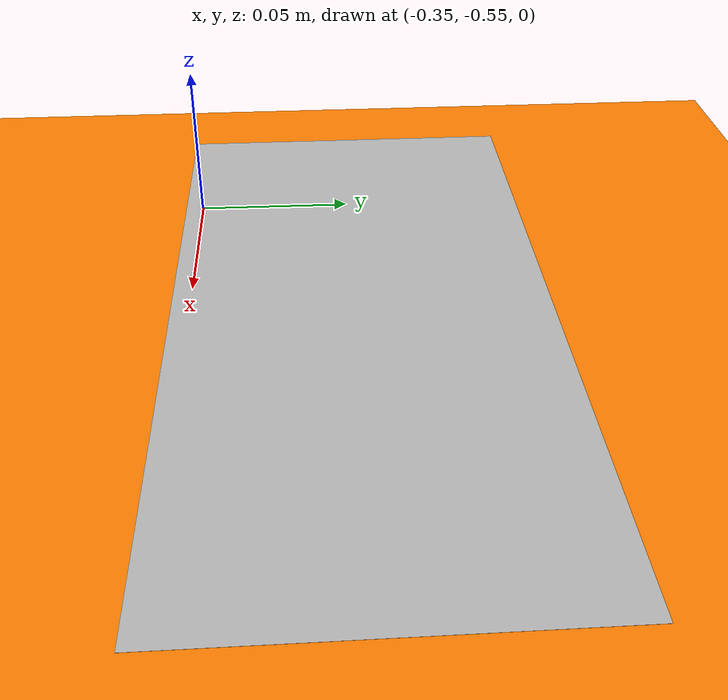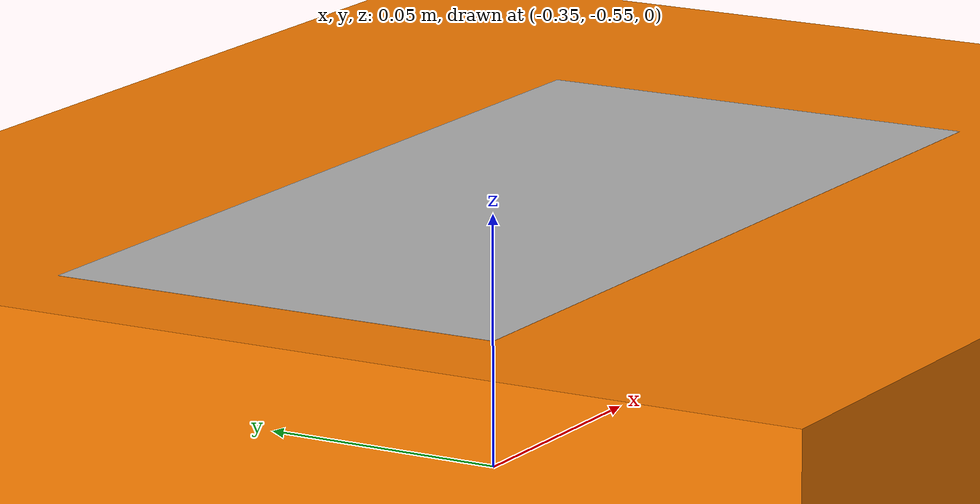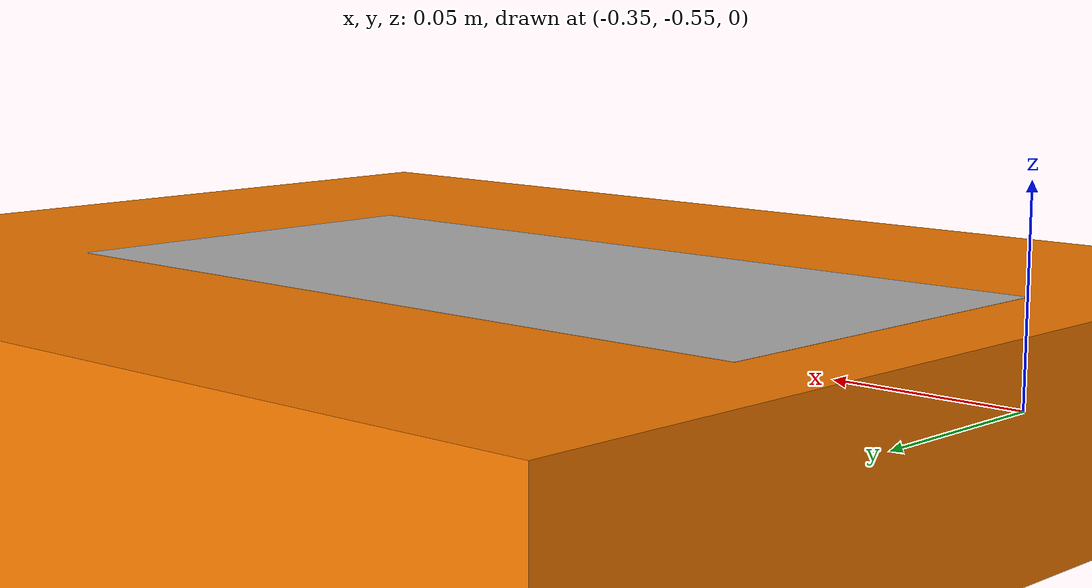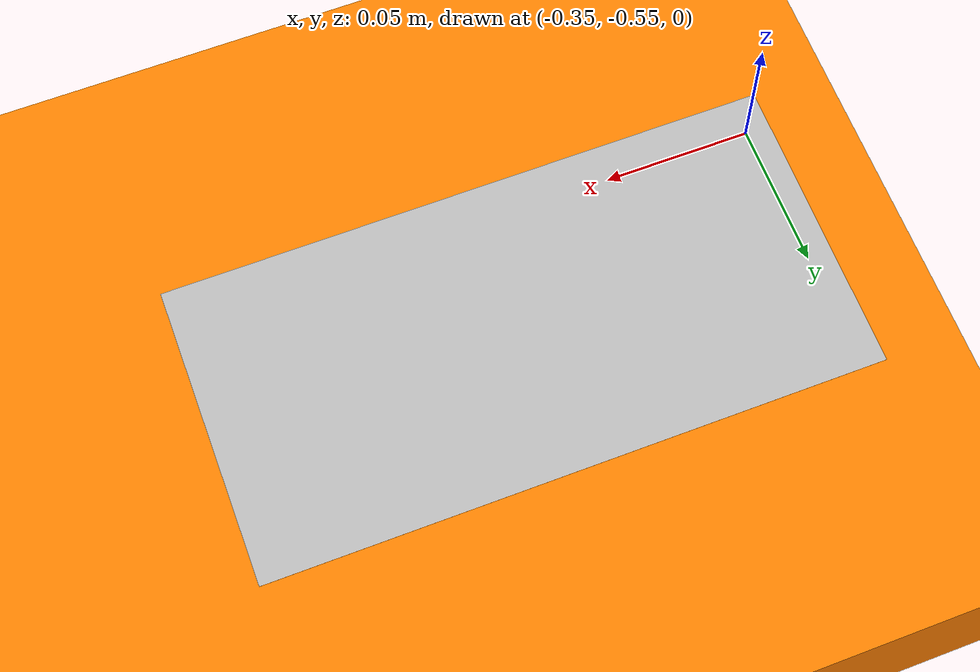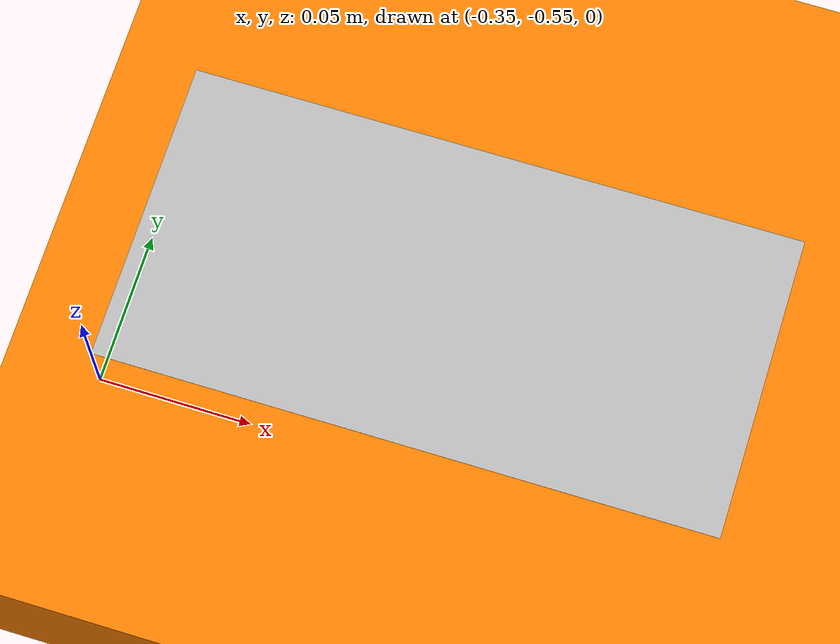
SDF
<?xml version="1.0" ?>
<sdf version="1.6">
  <model name="box0">

    <link name="box">
      <!-- Collision properties -->
      <collision name="collision">
        <pose>0 0 0 0 0 0</pose>
        <static>false</static>
        <geometry>
          <box>
            <size>0.75 1.5 0.05</size>
          </box>
        </geometry>
      </collision>

      <!-- Visual for the orange box -->
      <visual name="visual_orange_box">
        <pose>0 0 0 0 0 0</pose>
        <geometry>
          <box>
            <size>0.75 1.5 0.05</size>
          </box>
        </geometry>
        <material>
          <ambient>1 0.5 0 1</ambient>  <!-- Orange color -->
          <diffuse>1 0.5 0 1</diffuse>  <!-- Orange color -->
        </material>
      </visual>

      <!-- Visual for the barcode on the top face with a material script -->
      <visual name="visual_barcode">
        <pose>-0.25 -0.5 0.025 0 0 0</pose>  <!-- Positioned on top of the box -->
        <geometry>
          <plane>
            <size>0.2 0.1</size>
          </plane>
        </geometry>
        <material>
          <script>
            <uri>model://materials/scripts</uri>
            <uri>model://materials/textures</uri>
            <name>face/Image</name> <!-- Reference to the custom material -->
          </script>
        </material>
      </visual>

      <!-- Inertial properties -->
      <inertial>
        <mass>1.9121704081632653</mass>
        <inertia>
          <ixx>0.35893032036564626</ixx>
          <ixy>0</ixy>
          <ixz>0</ixz>
          <iyy>0.4481649394132653</iyy>
          <iyz>0</iyz>
          <izz>0.09003135671768706</izz>
        </inertia>
      </inertial>

    </link>

    <!-- Gazebo-specific properties -->
    <plugin name="gazebo" filename="libgazebo_ros.so">
      <material>Gazebo/Orange</material>
      <mu1>100.0</mu1>
      <mu2>100.0</mu2>
      <self_collide>false</self_collide>
    </plugin>

  </model>
</sdf>
